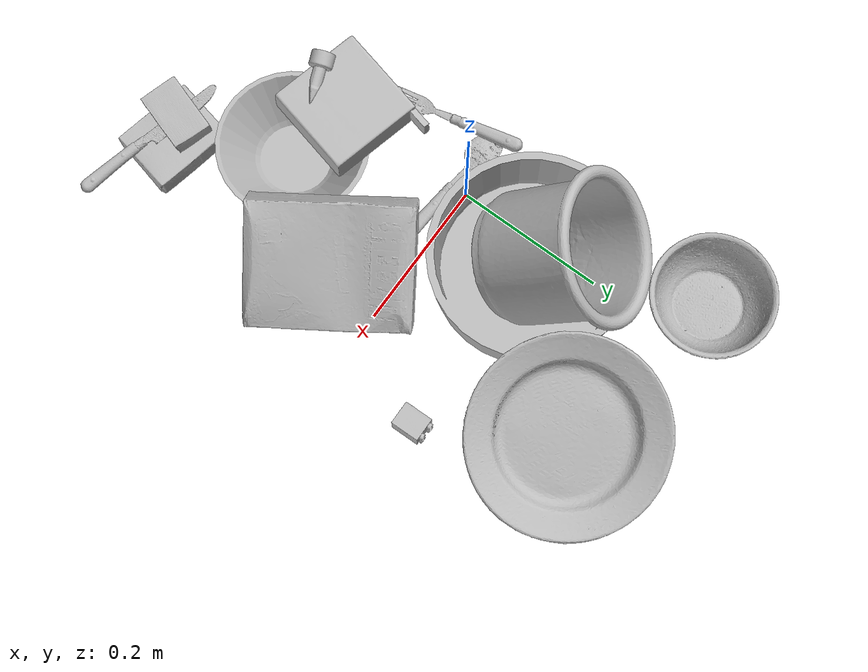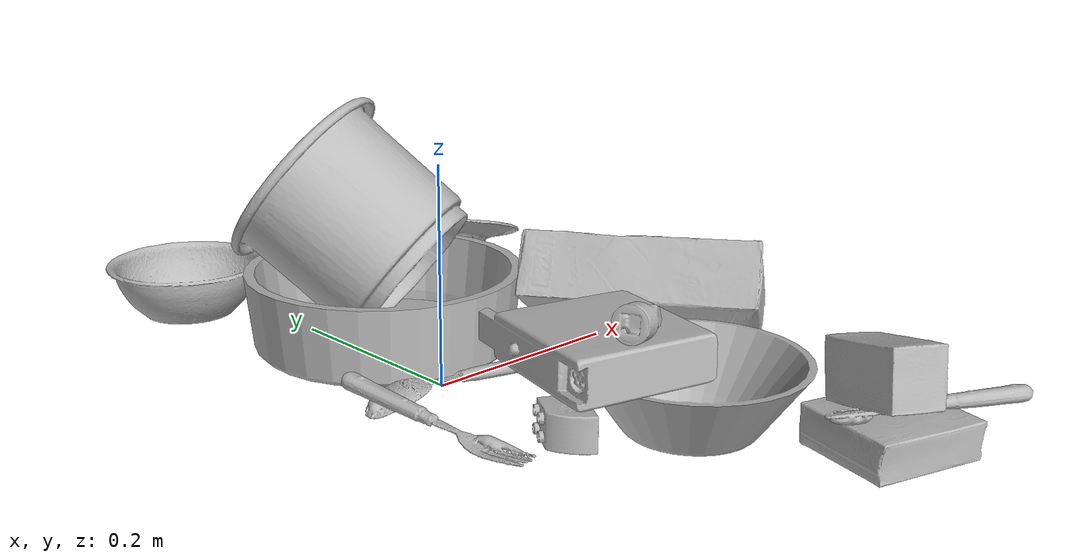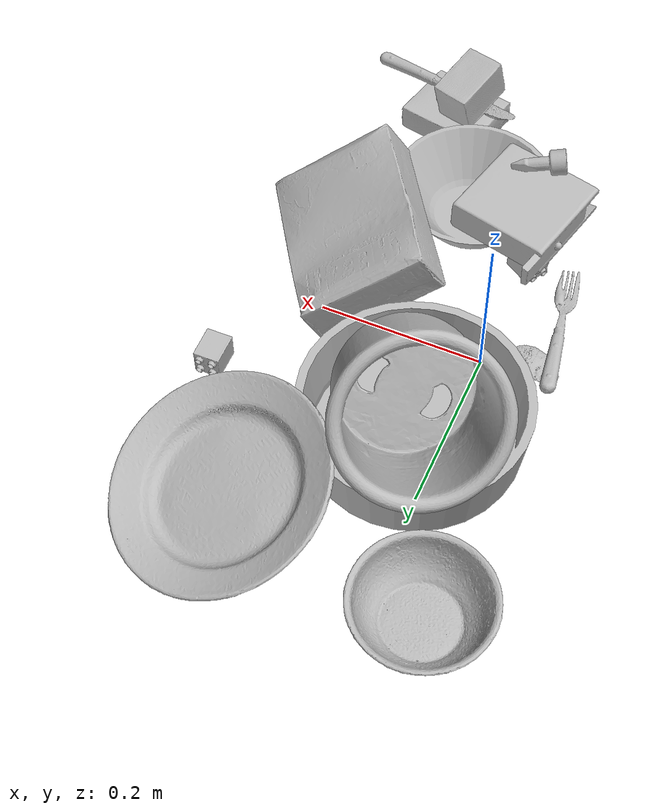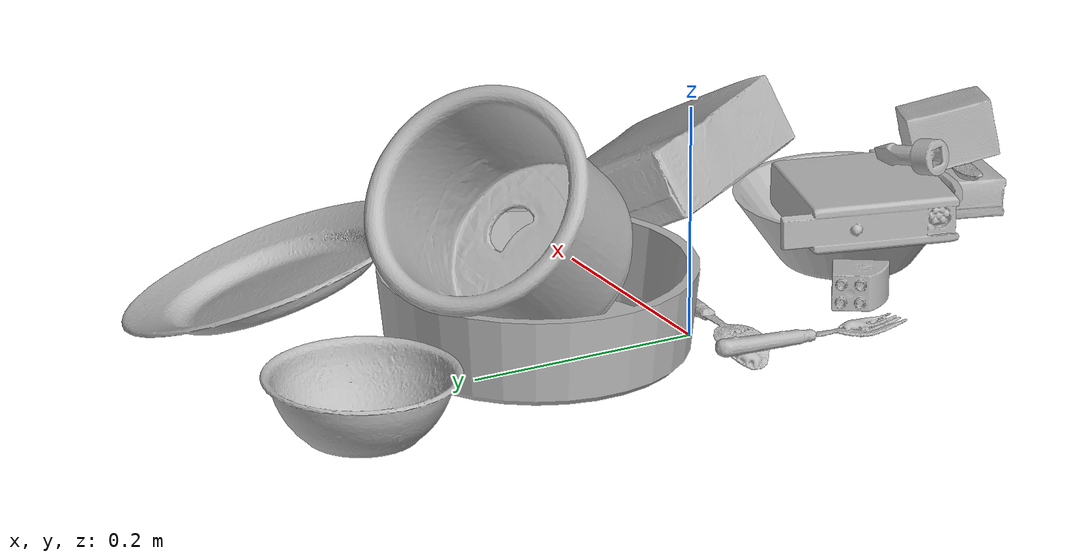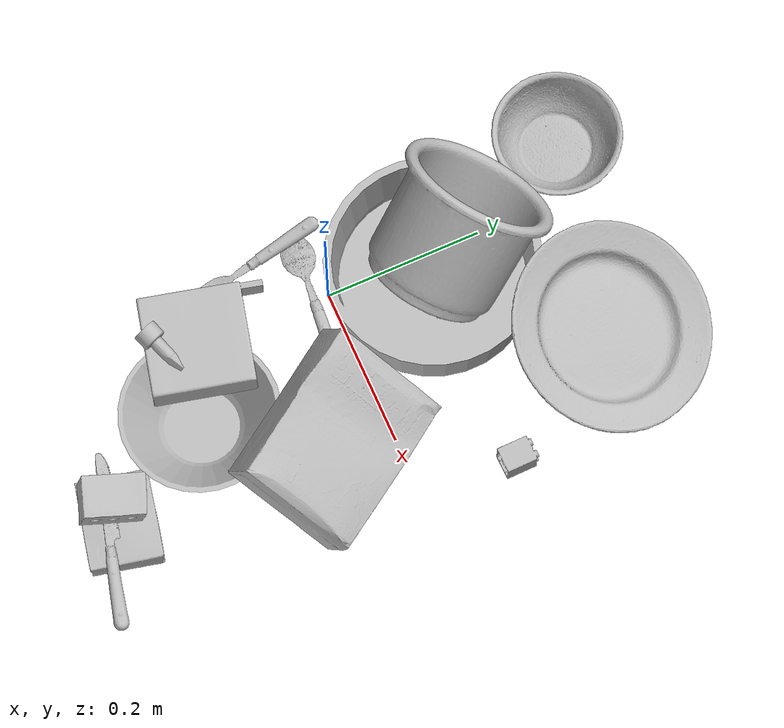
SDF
<sdf version="1.4">
  <world name="default">
    <light name="light1" type="point">
      <pose>0 0 1 0 0 0</pose>
      <diffuse>3 3 3 1</diffuse>
      <specular>3 3 3 1</specular>
    </light>
    <light name="light2" type="point">
      <pose>0 0.5 2 0 0 0</pose>
      <diffuse>1 1 1 1</diffuse>
      <specular>1 1 1 1</specular>
    </light>
    <light name="light3" type="point">
      <pose>0 0.5 2 0 0 0</pose>
      <diffuse>3 3 3 1</diffuse>
      <specular>3 3 3 1</specular>
    </light>
    <scene>
      <ambient>0.7 0.7 0.7</ambient>
    </scene>
    <model name="plate1">
      <link name="link_plate1">
        <collision name="default">
          <geometry>
            <mesh>
              <uri>model://pan_tefal/collision_meshes/collision.obj</uri>
              <scale>1.0 1.0 1.0</scale>
            </mesh>
          </geometry>
          <surface>
            <friction>
              <ode>
                <mu>0.5</mu>
                <mu2>0.5</mu2>
              </ode>
            </friction>
          <contact>
        <ode>
            <max_vel>0</max_vel>
            <min_depth>0.0001</min_depth>
            <kp>1e8</kp>
        </ode>
    </contact></surface>
        </collision>
        <visual name="default">
          <geometry>
            <mesh>
              <uri>model://pan_tefal/visual_meshes/visual.dae</uri>
              <scale>1.0 1.0 1.0</scale>
            </mesh>
          </geometry>
        </visual>
        <inertial>
          <mass>0.7050602436065674</mass>
          <pose>-0.00018002082651946694 3.279098018538207e-05 -0.008514933288097382 0.0008190340203057913 -0.0003301288692481796 -0.3318720847028622</pose>
          <inertia>
            <ixx>0.0048669963</ixx>
            <iyy>0.0048983735</iyy>
            <izz>0.008959204</izz>
            <ixy>0</ixy>
            <ixz>0</ixz>
            <iyz>0</iyz>
          </inertia>
        </inertial>
      </link>
      <pose>0.03319908678531647 0.12415769696235657 0.03805002197623253 -1.5972000277309218e-06 1.417348106967759e-06 1.1641259147062133</pose>
    </model>
    <model name="plate2">
      <link name="link_plate2">
        <collision name="default">
          <geometry>
            <mesh>
              <uri>model://plate/collision_meshes/collision.obj</uri>
              <scale>1.0 1.0 1.0</scale>
            </mesh>
          </geometry>
          <surface>
            <friction>
              <ode>
                <mu>0.5</mu>
                <mu2>0.5</mu2>
              </ode>
            </friction>
          <contact>
        <ode>
            <max_vel>0</max_vel>
            <min_depth>0.0001</min_depth>
            <kp>1e8</kp>
        </ode>
    </contact></surface>
        </collision>
        <visual name="default">
          <geometry>
            <mesh>
              <uri>model://plate/visual_meshes/visual.dae</uri>
              <scale>1.0 1.0 1.0</scale>
            </mesh>
          </geometry>
        </visual>
        <inertial>
          <mass>0.2442774623632431</mass>
          <pose>-0.0006044568726792932 0.0002782584633678198 -0.0010561984963715076 0.0022187778178748897 -0.0032254919076997847 0.45261061169843664</pose>
          <inertia>
            <ixx>0.0011427345</ixx>
            <iyy>0.001131805</iyy>
            <izz>0.002235018</izz>
            <ixy>0</ixy>
            <ixz>0</ixz>
            <iyz>0</iyz>
          </inertia>
        </inertial>
      </link>
      <pose>0.18816770613193512 0.2883211076259613 0.04056015610694885 0.2939766865914565 -0.19731050829265528 2.9791934685230754</pose>
    </model>
    <model name="bowl1">
      <link name="link_bowl1">
        <collision name="default">
          <geometry>
            <mesh>
              <uri>model://bowl_a/collision_meshes/collision.obj</uri>
              <scale>1.0 1.0 1.0</scale>
            </mesh>
          </geometry>
          <surface>
            <friction>
              <ode>
                <mu>0.5</mu>
                <mu2>0.5</mu2>
              </ode>
            </friction>
          <contact>
        <ode>
            <max_vel>0</max_vel>
            <min_depth>0.0001</min_depth>
            <kp>1e8</kp>
        </ode>
    </contact></surface>
        </collision>
        <visual name="default">
          <geometry>
            <mesh>
              <uri>model://bowl_a/visual_meshes/visual.dae</uri>
              <scale>1.0 1.0 1.0</scale>
            </mesh>
          </geometry>
        </visual>
        <inertial>
          <mass>0.4025156497955322</mass>
          <pose>0.00027867371682077646 4.731032458948903e-05 -0.0013765298062935472 -0.00098054011869292 -0.0010938175729232503 -0.19123339485915475</pose>
          <inertia>
            <ixx>0.0011459808</ixx>
            <iyy>0.0011530165</iyy>
            <izz>0.0020381706</izz>
            <ixy>0</ixy>
            <ixz>0</ixz>
            <iyz>0</iyz>
          </inertia>
        </inertial>
      </link>
      <pose>0.09070448577404022 -0.20602518320083618 0.030383819714188576 -1.9551396373684675e-05 3.892339681071339e-06 -2.8908719557193527</pose>
    </model>
    <model name="bowl2">
      <link name="link_bowl2">
        <collision name="default">
          <geometry>
            <mesh>
              <uri>model://bowl/collision_meshes/collision.obj</uri>
              <scale>1.0 1.0 1.0</scale>
            </mesh>
          </geometry>
          <surface>
            <friction>
              <ode>
                <mu>0.5</mu>
                <mu2>0.5</mu2>
              </ode>
            </friction>
          <contact>
        <ode>
            <max_vel>0</max_vel>
            <min_depth>0.0001</min_depth>
            <kp>1e8</kp>
        </ode>
    </contact></surface>
        </collision>
        <visual name="default">
          <geometry>
            <mesh>
              <uri>model://bowl/visual_meshes/visual.dae</uri>
              <scale>1.0 1.0 1.0</scale>
            </mesh>
          </geometry>
        </visual>
        <inertial>
          <mass>0.04694162309169769</mass>
          <pose>0.00020445318659767509 -0.001030211104080081 -0.0008042642730288208 -0.01576400215318024 0.014546874726031786 0.7140460761636136</pose>
          <inertia>
            <ixx>0.0001078286</ixx>
            <iyy>0.000105419305</iyy>
            <izz>0.00018140484</izz>
            <ixy>0</ixy>
            <ixz>0</ixz>
            <iyz>0</iyz>
          </inertia>
        </inertial>
      </link>
      <pose>-0.06109869107604027 0.3330690860748291 0.027780011296272278 -4.428887949866164e-09 -3.2611389130573386e-08 -0.6707772874610484</pose>
    </model>
    <model name="silverware1">
      <link name="link_silverware1">
        <collision name="default">
          <geometry>
            <mesh>
              <uri>model://spoon/collision_meshes/collision.obj</uri>
              <scale>1.0 1.0 1.0</scale>
            </mesh>
          </geometry>
          <surface>
            <friction>
              <ode>
                <mu>0.5</mu>
                <mu2>0.5</mu2>
              </ode>
            </friction>
          <contact>
        <ode>
            <max_vel>0</max_vel>
            <min_depth>0.0001</min_depth>
            <kp>1e8</kp>
        </ode>
    </contact></surface>
        </collision>
        <visual name="default">
          <geometry>
            <mesh>
              <uri>model://spoon/visual_meshes/visual.dae</uri>
              <scale>1.0 1.0 1.0</scale>
            </mesh>
          </geometry>
        </visual>
        <inertial>
          <mass>0.03710600733757019</mass>
          <pose>-0.005526318680495024 -0.0016034168656915426 -0.0007271650829352438 0.03521602429168162 -0.03906583039209626 0.006150612964611125</pose>
          <inertia>
            <ixx>2.0638956e-06</ixx>
            <iyy>0.00014118708</iyy>
            <izz>0.00014220492</izz>
            <ixy>0</ixy>
            <ixz>0</ixz>
            <iyz>0</iyz>
          </inertia>
        </inertial>
      </link>
      <pose>0.005935867317020893 -0.01822388730943203 0.010133404284715652 3.105077923584089 -0.061981574067998764 3.0606046330815984</pose>
    </model>
    <model name="box1">
      <link name="link_box1">
        <collision name="default">
          <geometry>
            <mesh>
              <uri>model://cracker_box/collision_meshes/collision.obj</uri>
              <scale>1.0 1.0 1.0</scale>
            </mesh>
          </geometry>
          <surface>
            <friction>
              <ode>
                <mu>0.5</mu>
                <mu2>0.5</mu2>
              </ode>
            </friction>
          <contact>
        <ode>
            <max_vel>0</max_vel>
            <min_depth>0.0001</min_depth>
            <kp>1e8</kp>
        </ode>
    </contact></surface>
        </collision>
        <visual name="default">
          <geometry>
            <mesh>
              <uri>model://cracker_box/visual_meshes/visual.dae</uri>
              <scale>1.0 1.0 1.0</scale>
            </mesh>
          </geometry>
        </visual>
        <inertial>
          <mass>2.252173662185669</mass>
          <pose>0.0009464137838222086 0.0002543425071053207 -0.0017029535956680775 -0.000316207513865998 -0.011106489600465836 0.0025467954670329632</pose>
          <inertia>
            <ixx>0.0057285246</ixx>
            <iyy>0.00945892</iyy>
            <izz>0.013498746</izz>
            <ixy>0</ixy>
            <ixz>0</ixz>
            <iyz>0</iyz>
          </inertia>
        </inertial>
      </link>
      <pose>0.18914417922496796 -0.07183555513620377 0.069073885679245 -0.5086392967899317 -5.080898183079373e-06 -0.9891155007610913</pose>
    </model>
    <model name="box2">
      <link name="link_box2">
        <collision name="default">
          <geometry>
            <mesh>
              <uri>model://pudding_box/collision_meshes/collision.obj</uri>
              <scale>1.0 1.0 1.0</scale>
            </mesh>
          </geometry>
          <surface>
            <friction>
              <ode>
                <mu>0.5</mu>
                <mu2>0.5</mu2>
              </ode>
            </friction>
          <contact>
        <ode>
            <max_vel>0</max_vel>
            <min_depth>0.0001</min_depth>
            <kp>1e8</kp>
        </ode>
    </contact></surface>
        </collision>
        <visual name="default">
          <geometry>
            <mesh>
              <uri>model://pudding_box/visual_meshes/visual.dae</uri>
              <scale>1.0 1.0 1.0</scale>
            </mesh>
          </geometry>
        </visual>
        <inertial>
          <mass>0.38795164227485657</mass>
          <pose>0.0004894821904599667 0.0008067885646596551 -0.0005188827635720372 0.005213102258195884 -0.006603798723254801 0.020079825158131615</pose>
          <inertia>
            <ixx>0.00043855933</ixx>
            <iyy>0.00029506587</iyy>
            <izz>0.0006476475</izz>
            <ixy>0</ixy>
            <ixz>0</ixz>
            <iyz>0</iyz>
          </inertia>
        </inertial>
      </link>
      <pose>0.16565775871276855 -0.3434504270553589 0.019725879654288292 0.02233046628717711 -0.011397143562426125 1.3480404072668037</pose>
    </model>
    <model name="cup1">
      <link name="link_cup1">
        <collision name="default">
          <geometry>
            <mesh>
              <uri>model://i_cups/collision_meshes/collision.obj</uri>
              <scale>2.0 2.0 2.0</scale>
            </mesh>
          </geometry>
          <surface>
            <friction>
              <ode>
                <mu>0.5</mu>
                <mu2>0.5</mu2>
              </ode>
            </friction>
          <contact>
        <ode>
            <max_vel>0</max_vel>
            <min_depth>0.0001</min_depth>
            <kp>1e8</kp>
        </ode>
    </contact></surface>
        </collision>
        <visual name="default">
          <geometry>
            <mesh>
              <uri>model://i_cups/visual_meshes/visual.dae</uri>
              <scale>2.0 2.0 2.0</scale>
            </mesh>
          </geometry>
        </visual>
        <inertial>
          <mass>0.8781275153160095</mass>
          <pose>0.00022480404004454613 0.0003359464171808213 -0.0017158013070002198 -0.028983801808433914 -0.03987279960401974 -0.34589629987983705</pose>
          <inertia>
            <ixx>0.004863122</ixx>
            <iyy>0.004905971</iyy>
            <izz>0.005435325</izz>
            <ixy>0</ixy>
            <ixz>0</ixz>
            <iyz>0</iyz>
          </inertia>
        </inertial>
      </link>
      <pose>0.025832494720816612 0.1531108319759369 0.11387214809656143 -0.7039118216952801 -0.6297451944481444 -0.07244956425919317</pose>
    </model>
    <model name="silverware2">
      <link name="link_silverware2">
        <collision name="default">
          <geometry>
            <mesh>
              <uri>model://fork/collision_meshes/collision.obj</uri>
              <scale>1.0 1.0 1.0</scale>
            </mesh>
          </geometry>
          <surface>
            <friction>
              <ode>
                <mu>0.5</mu>
                <mu2>0.5</mu2>
              </ode>
            </friction>
          <contact>
        <ode>
            <max_vel>0</max_vel>
            <min_depth>0.0001</min_depth>
            <kp>1e8</kp>
        </ode>
    </contact></surface>
        </collision>
        <visual name="default">
          <geometry>
            <mesh>
              <uri>model://fork/visual_meshes/visual.dae</uri>
              <scale>1.0 1.0 1.0</scale>
            </mesh>
          </geometry>
        </visual>
        <inertial>
          <mass>0.027322283014655113</mass>
          <pose>-0.02957003377377987 0.0004658822435885668 0.0003218860656488687 -0.013551502868568713 -0.01097783467120204 0.01445389601768567</pose>
          <inertia>
            <ixx>9.578007e-07</ixx>
            <iyy>7.133063e-05</iyy>
            <izz>7.175903e-05</izz>
            <ixy>0</ixy>
            <ixz>0</ixz>
            <iyz>0</iyz>
          </inertia>
        </inertial>
      </link>
      <pose>-0.07129014283418655 -0.07202666997909546 0.010961208492517471 0.04660950911275365 0.13947290228450449 -1.404543335666746</pose>
    </model>
    <model name="silverware3">
      <link name="link_silverware3">
        <collision name="default">
          <geometry>
            <mesh>
              <uri>model://knife/collision_meshes/collision.obj</uri>
              <scale>1.0 1.0 1.0</scale>
            </mesh>
          </geometry>
          <surface>
            <friction>
              <ode>
                <mu>0.5</mu>
                <mu2>0.5</mu2>
              </ode>
            </friction>
          <contact>
        <ode>
            <max_vel>0</max_vel>
            <min_depth>0.0001</min_depth>
            <kp>1e8</kp>
        </ode>
    </contact></surface>
        </collision>
        <visual name="default">
          <geometry>
            <mesh>
              <uri>model://knife/visual_meshes/visual.dae</uri>
              <scale>1.0 1.0 1.0</scale>
            </mesh>
          </geometry>
        </visual>
        <inertial>
          <mass>0.036400385200977325</mass>
          <pose>-0.02378525584936142 0.0015275126788765192 5.0620175898075104e-05 0.07305876248658423 0.017248417790611748 -0.007409819472147862</pose>
          <inertia>
            <ixx>1.0331904e-06</ixx>
            <iyy>0.00013984439</iyy>
            <izz>0.00014017712</izz>
            <ixy>0</ixy>
            <ixz>0</ixz>
            <iyz>0</iyz>
          </inertia>
        </inertial>
      </link>
      <pose>0.18830299377441406 -0.36148977279663086 0.041422970592975616 0.16709159888938183 -0.09480292294384815 2.862690180999004</pose>
    </model>
    <model name="toy1">
      <link name="link_toy1">
        <collision name="default">
          <geometry>
            <mesh>
              <uri>model://d_lego_duplo/collision_meshes/collision.obj</uri>
              <scale>1.0 1.0 1.0</scale>
            </mesh>
          </geometry>
          <surface>
            <friction>
              <ode>
                <mu>0.5</mu>
                <mu2>0.5</mu2>
              </ode>
            </friction>
          <contact>
        <ode>
            <max_vel>0</max_vel>
            <min_depth>0.0001</min_depth>
            <kp>1e8</kp>
        </ode>
    </contact></surface>
        </collision>
        <visual name="default">
          <geometry>
            <mesh>
              <uri>model://d_lego_duplo/visual_meshes/visual.dae</uri>
              <scale>1.0 1.0 1.0</scale>
            </mesh>
          </geometry>
        </visual>
        <inertial>
          <mass>0.060466669499874115</mass>
          <pose>0.002830563113093376 0.00016366162162739784 0.0008589806384406984 0.08010949306805684 -0.3835523000845375 0.0010296676643477064</pose>
          <inertia>
            <ixx>1.1705457e-05</ixx>
            <iyy>1.6613216e-05</iyy>
            <izz>1.6021117e-05</izz>
            <ixy>0</ixy>
            <ixz>0</ixz>
            <iyz>0</iyz>
          </inertia>
        </inertial>
      </link>
      <pose>-0.00784012209624052 -0.15954934060573578 0.016380641609430313 -1.5707796206396145 -0.008031421440703233 1.0191230824739574</pose>
    </model>
    <model name="toy2">
      <link name="link_toy2">
        <collision name="default">
          <geometry>
            <mesh>
              <uri>model://b_lego_duplo/collision_meshes/collision.obj</uri>
              <scale>1.0 1.0 1.0</scale>
            </mesh>
          </geometry>
          <surface>
            <friction>
              <ode>
                <mu>0.5</mu>
                <mu2>0.5</mu2>
              </ode>
            </friction>
          <contact>
        <ode>
            <max_vel>0</max_vel>
            <min_depth>0.0001</min_depth>
            <kp>1e8</kp>
        </ode>
    </contact></surface>
        </collision>
        <visual name="default">
          <geometry>
            <mesh>
              <uri>model://b_lego_duplo/visual_meshes/visual.dae</uri>
              <scale>1.0 1.0 1.0</scale>
            </mesh>
          </geometry>
        </visual>
        <inertial>
          <mass>0.030077241361141205</mass>
          <pose>-0.00011053079651901498 -9.15232340048533e-06 0.0019294286612421274 -0.037494862621914114 -0.026354003688684128 0.4518993950044185</pose>
          <inertia>
            <ixx>6.155532e-06</ixx>
            <iyy>6.196912e-06</iyy>
            <izz>5.4843786e-06</izz>
            <ixy>0</ixy>
            <ixz>0</ixz>
            <iyz>0</iyz>
          </inertia>
        </inertial>
      </link>
      <pose>0.2837240397930145 0.12416326999664307 0.01615240052342415 -3.1205123360675815 1.5624596287421977 -1.5349287840485721</pose>
    </model>
    <model name="toy3">
      <link name="link_toy3">
        <collision name="default">
          <geometry>
            <mesh>
              <uri>model://nine_hole_peg_test/collision_meshes/collision.obj</uri>
              <scale>1.0 1.0 1.0</scale>
            </mesh>
          </geometry>
          <surface>
            <friction>
              <ode>
                <mu>0.5</mu>
                <mu2>0.5</mu2>
              </ode>
            </friction>
          <contact>
        <ode>
            <max_vel>0</max_vel>
            <min_depth>0.0001</min_depth>
            <kp>1e8</kp>
        </ode>
    </contact></surface>
        </collision>
        <visual name="default">
          <geometry>
            <mesh>
              <uri>model://nine_hole_peg_test/visual_meshes/visual.dae</uri>
              <scale>1.0 1.0 1.0</scale>
            </mesh>
          </geometry>
        </visual>
        <inertial>
          <mass>0.9411391019821167</mass>
          <pose>-0.0046173869632184505 -0.009647615253925323 2.646069333422929e-05 -0.0014666795036135398 0.0007194176186147546 -0.6342417663820423</pose>
          <inertia>
            <ixx>0.0014716258</ixx>
            <iyy>0.0013740414</iyy>
            <izz>0.0025787223</izz>
            <ixy>0</ixy>
            <ixz>0</ixz>
            <iyz>0</iyz>
          </inertia>
        </inertial>
      </link>
      <pose>0.01379601564258337 -0.16493700444698334 0.08128420263528824 3.141486734399978 -0.000472106279533212 2.896769038653728</pose>
    </model>
    <model name="toy4">
      <link name="link_toy4">
        <collision name="default">
          <geometry>
            <mesh>
              <uri>model://foam_brick/collision_meshes/collision.obj</uri>
              <scale>1.0 1.0 1.0</scale>
            </mesh>
          </geometry>
          <surface>
            <friction>
              <ode>
                <mu>0.5</mu>
                <mu2>0.5</mu2>
              </ode>
            </friction>
          <contact>
        <ode>
            <max_vel>0</max_vel>
            <min_depth>0.0001</min_depth>
            <kp>1e8</kp>
        </ode>
    </contact></surface>
        </collision>
        <visual name="default">
          <geometry>
            <mesh>
              <uri>model://foam_brick/visual_meshes/visual.dae</uri>
              <scale>1.0 1.0 1.0</scale>
            </mesh>
          </geometry>
        </visual>
        <inertial>
          <mass>0.1527709662914276</mass>
          <pose>-0.00025224717683158815 0.0003458428254816681 -0.00025321016437374055 -0.29402015796081304 0.017274438268763303 -0.0007449889855682301</pose>
          <inertia>
            <ixx>6.673321e-05</ixx>
            <iyy>0.00010654301</iyy>
            <izz>0.00010789704</izz>
            <ixy>0</ixy>
            <ixz>0</ixz>
            <iyz>0</iyz>
          </inertia>
        </inertial>
      </link>
      <pose>0.14921440184116364 -0.3425489664077759 0.07234121114015579 1.6704305891016433 0.1949563370990996 1.2753851871861805</pose>
    </model>
    <model name="toy5">
      <link name="link_toy5">
        <collision name="default">
          <geometry>
            <mesh>
              <uri>model://e_toy_airplane/collision_meshes/collision.obj</uri>
              <scale>1.0 1.0 1.0</scale>
            </mesh>
          </geometry>
          <surface>
            <friction>
              <ode>
                <mu>0.5</mu>
                <mu2>0.5</mu2>
              </ode>
            </friction>
          <contact>
        <ode>
            <max_vel>0</max_vel>
            <min_depth>0.0001</min_depth>
            <kp>1e8</kp>
        </ode>
    </contact></surface>
        </collision>
        <visual name="default">
          <geometry>
            <mesh>
              <uri>model://e_toy_airplane/visual_meshes/visual.dae</uri>
              <scale>1.0 1.0 1.0</scale>
            </mesh>
          </geometry>
        </visual>
        <inertial>
          <mass>0.01976589486002922</mass>
          <pose>0.00011740453192032874 -2.2483010980067775e-05 -0.011187207885086536 0.005518504435964777 0.009228288570086122 0.15041432989491213</pose>
          <inertia>
            <ixx>6.0327766e-06</ixx>
            <iyy>5.971064e-06</iyy>
            <izz>1.813087e-06</izz>
            <ixy>0</ixy>
            <ixz>0</ixz>
            <iyz>0</iyz>
          </inertia>
        </inertial>
      </link>
      <pose>0.017150457948446274 -0.21839602291584015 0.1144055724143982 1.7536105664689254 0.37513273089171234 1.9969387492665498</pose>
    </model>
  <physics type="ode">
      <max_contacts>50</max_contacts>
      <ode>
        <solver>
          <type>quick</type>
          <iters>75</iters>
        </solver>
        <constraints>
          <contact_max_correcting_vel>0</contact_max_correcting_vel>
          <contact_surface_layer>0</contact_surface_layer>
        </constraints>
      </ode>
    </physics></world>
</sdf>
